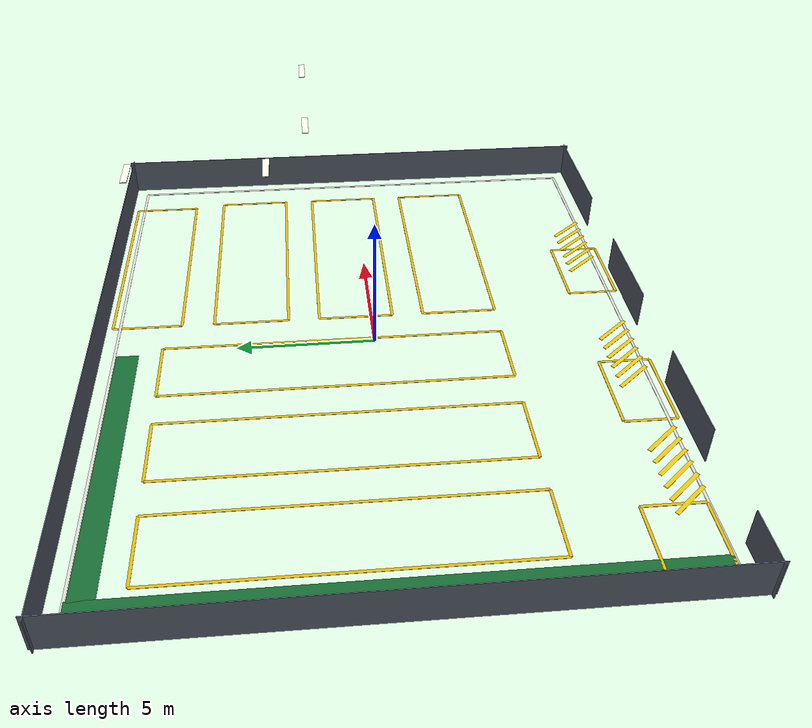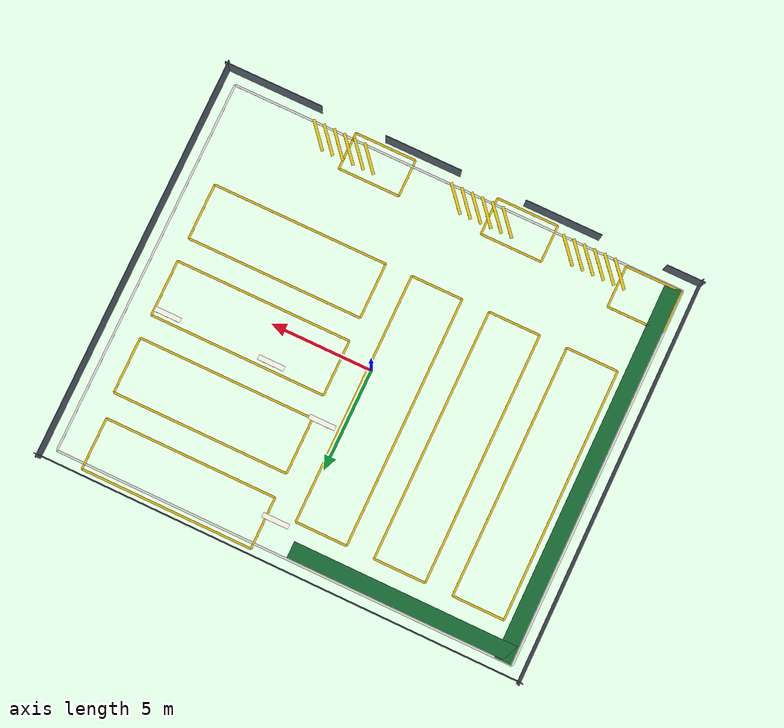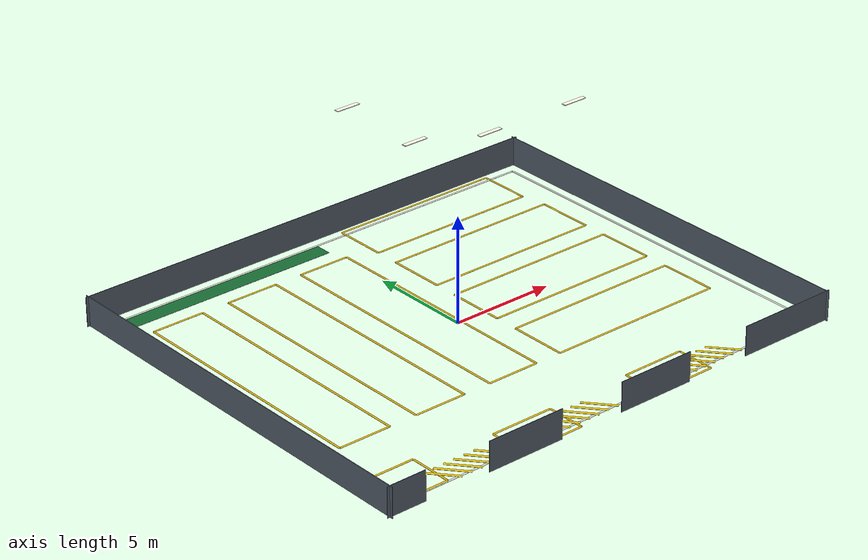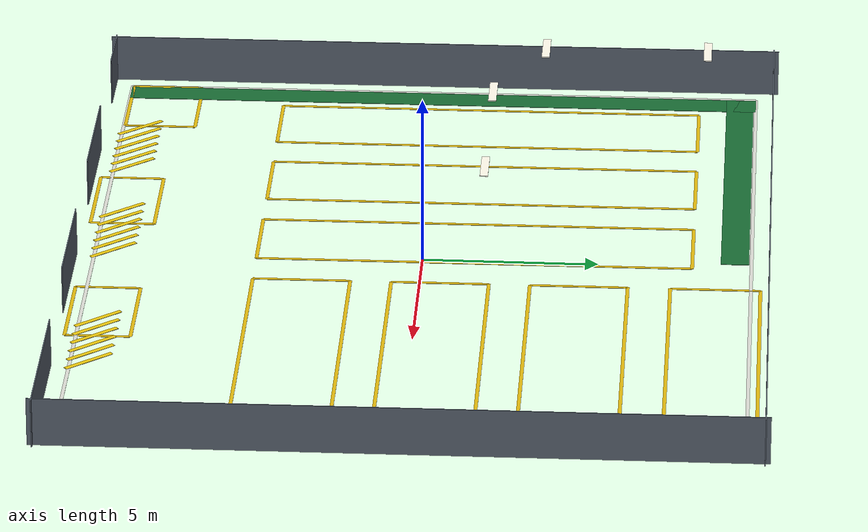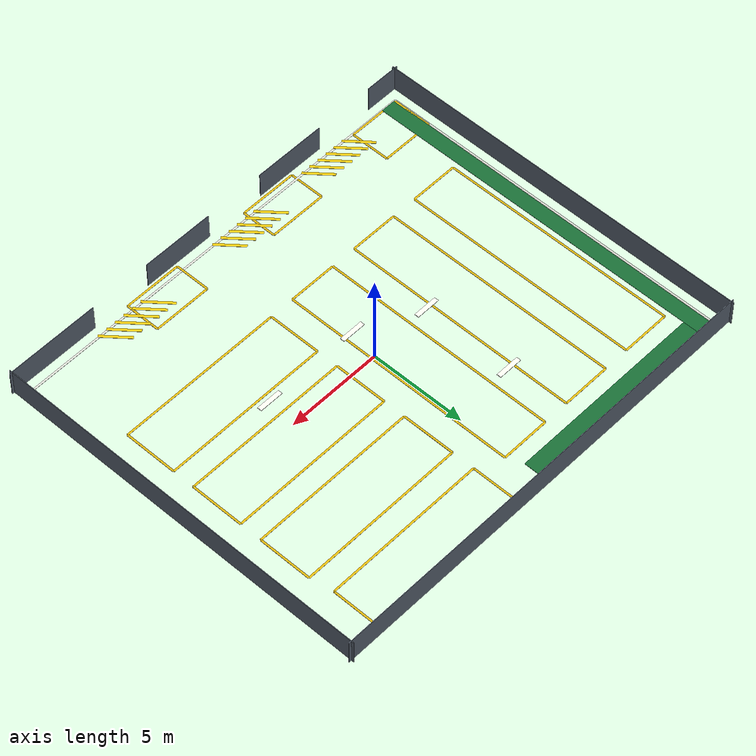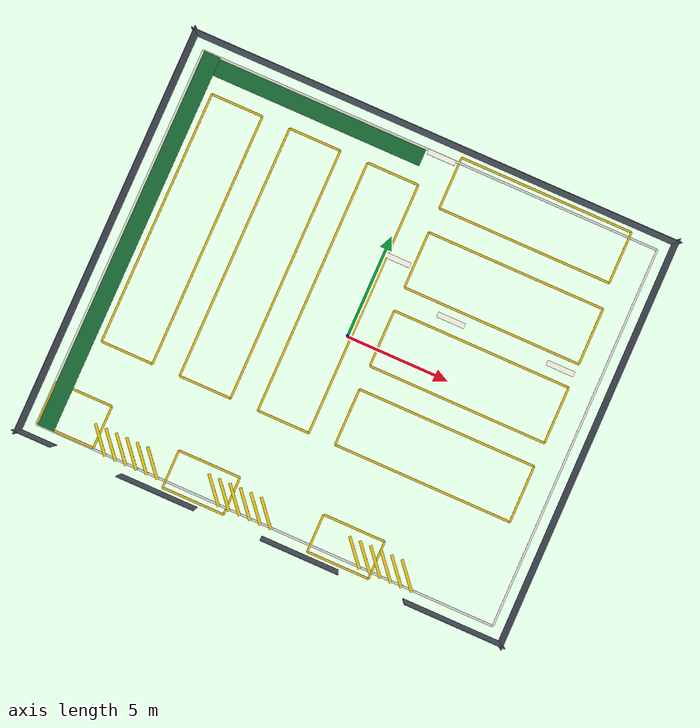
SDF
<sdf version="1.8">
 <world name="warehouse_v2">
  <model name="lamp_glow_8">
   <static>true</static>
   <pose>0.62 3.50 6.97 0 0 0</pose>
   <link name="link">
    <visual name="visual">
     <geometry><box><size>1.20 0.22 0.03</size></box></geometry>
     <material>
      <ambient>1 0.98 0.92 1</ambient>
      <diffuse>1 0.98 0.92 1</diffuse>
      <specular>0.2 0.2 0.2 1</specular>
      <emissive>1 0.97 0.90 1</emissive>
     </material>
     <cast_shadows>false</cast_shadows>
    </visual>
   </link>
  </model>
  <model name="lamp_glow_9">
   <static>true</static>
   <pose>0.62 8.00 6.97 0 0 0</pose>
   <link name="link">
    <visual name="visual">
     <geometry><box><size>1.20 0.22 0.03</size></box></geometry>
     <material>
      <ambient>1 0.98 0.92 1</ambient>
      <diffuse>1 0.98 0.92 1</diffuse>
      <specular>0.2 0.2 0.2 1</specular>
      <emissive>1 0.97 0.90 1</emissive>
     </material>
     <cast_shadows>false</cast_shadows>
    </visual>
   </link>
  </model>
  <model name="lamp_glow_12">
   <static>true</static>
   <pose>3.60 2.15 6.97 0 0 0</pose>
   <link name="link">
    <visual name="visual">
     <geometry><box><size>1.20 0.22 0.03</size></box></geometry>
     <material>
      <ambient>1 0.98 0.92 1</ambient>
      <diffuse>1 0.98 0.92 1</diffuse>
      <specular>0.2 0.2 0.2 1</specular>
      <emissive>1 0.97 0.90 1</emissive>
     </material>
     <cast_shadows>false</cast_shadows>
    </visual>
   </link>
  </model>
  <model name="lamp_glow_13">
   <static>true</static>
   <pose>8.40 2.15 6.97 0 0 0</pose>
   <link name="link">
    <visual name="visual">
     <geometry><box><size>1.20 0.22 0.03</size></box></geometry>
     <material>
      <ambient>1 0.98 0.92 1</ambient>
      <diffuse>1 0.98 0.92 1</diffuse>
      <specular>0.2 0.2 0.2 1</specular>
      <emissive>1 0.97 0.90 1</emissive>
     </material>
     <cast_shadows>false</cast_shadows>
    </visual>
   </link>
  </model>
  <model name="ground_plane">
   <static>true</static>
   <link name="link">
    <collision name="collision">
     <geometry><plane><normal>0 0 1</normal><size>24.5 20.5</size></plane></geometry>
    </collision>
   </link>
  </model>
  <model name="warehouse_v2_floor_markings">
   <static>true</static>
   <link name="bay_A1_s">
    <pose>-8.900 -4.720 0.020 0 0 0.0000</pose>
    <visual name="visual">
     <geometry><box><size>2.540 0.100 0.012</size></box></geometry>
     <material>
      <ambient>0.88 0.72 0.05 1</ambient>
      <diffuse>0.88 0.72 0.05 1</diffuse>
      <specular>0.100 0.100 0.100 1</specular>
      <pbr><metal><metalness>0.00</metalness><roughness>0.80</roughness></metal></pbr>
     </material>
    </visual>
   </link>
   <link name="bay_A1_n">
    <pose>-8.900 7.671 0.020 0 0 0.0000</pose>
    <visual name="visual">
     <geometry><box><size>2.540 0.100 0.012</size></box></geometry>
     <material>
      <ambient>0.88 0.72 0.05 1</ambient>
      <diffuse>0.88 0.72 0.05 1</diffuse>
      <specular>0.100 0.100 0.100 1</specular>
      <pbr><metal><metalness>0.00</metalness><roughness>0.80</roughness></metal></pbr>
     </material>
    </visual>
   </link>
   <link name="bay_A1_w">
    <pose>-10.170 1.475 0.020 0 0 0.0000</pose>
    <visual name="visual">
     <geometry><box><size>0.100 12.391 0.012</size></box></geometry>
     <material>
      <ambient>0.88 0.72 0.05 1</ambient>
      <diffuse>0.88 0.72 0.05 1</diffuse>
      <specular>0.100 0.100 0.100 1</specular>
      <pbr><metal><metalness>0.00</metalness><roughness>0.80</roughness></metal></pbr>
     </material>
    </visual>
   </link>
   <link name="bay_A1_e">
    <pose>-7.630 1.475 0.020 0 0 0.0000</pose>
    <visual name="visual">
     <geometry><box><size>0.100 12.391 0.012</size></box></geometry>
     <material>
      <ambient>0.88 0.72 0.05 1</ambient>
      <diffuse>0.88 0.72 0.05 1</diffuse>
      <specular>0.100 0.100 0.100 1</specular>
      <pbr><metal><metalness>0.00</metalness><roughness>0.80</roughness></metal></pbr>
     </material>
    </visual>
   </link>
   <link name="bay_A2_s">
    <pose>-5.000 -4.720 0.020 0 0 0.0000</pose>
    <visual name="visual">
     <geometry><box><size>2.540 0.100 0.012</size></box></geometry>
     <material>
      <ambient>0.88 0.72 0.05 1</ambient>
      <diffuse>0.88 0.72 0.05 1</diffuse>
      <specular>0.100 0.100 0.100 1</specular>
      <pbr><metal><metalness>0.00</metalness><roughness>0.80</roughness></metal></pbr>
     </material>
    </visual>
   </link>
   <link name="bay_A2_n">
    <pose>-5.000 7.671 0.020 0 0 0.0000</pose>
    <visual name="visual">
     <geometry><box><size>2.540 0.100 0.012</size></box></geometry>
     <material>
      <ambient>0.88 0.72 0.05 1</ambient>
      <diffuse>0.88 0.72 0.05 1</diffuse>
      <specular>0.100 0.100 0.100 1</specular>
      <pbr><metal><metalness>0.00</metalness><roughness>0.80</roughness></metal></pbr>
     </material>
    </visual>
   </link>
   <link name="bay_A2_w">
    <pose>-6.270 1.475 0.020 0 0 0.0000</pose>
    <visual name="visual">
     <geometry><box><size>0.100 12.391 0.012</size></box></geometry>
     <material>
      <ambient>0.88 0.72 0.05 1</ambient>
      <diffuse>0.88 0.72 0.05 1</diffuse>
      <specular>0.100 0.100 0.100 1</specular>
      <pbr><metal><metalness>0.00</metalness><roughness>0.80</roughness></metal></pbr>
     </material>
    </visual>
   </link>
   <link name="bay_A2_e">
    <pose>-3.730 1.475 0.020 0 0 0.0000</pose>
    <visual name="visual">
     <geometry><box><size>0.100 12.391 0.012</size></box></geometry>
     <material>
      <ambient>0.88 0.72 0.05 1</ambient>
      <diffuse>0.88 0.72 0.05 1</diffuse>
      <specular>0.100 0.100 0.100 1</specular>
      <pbr><metal><metalness>0.00</metalness><roughness>0.80</roughness></metal></pbr>
     </material>
    </visual>
   </link>
   <link name="bay_A3_s">
    <pose>-1.100 -4.720 0.020 0 0 0.0000</pose>
    <visual name="visual">
     <geometry><box><size>2.540 0.100 0.012</size></box></geometry>
     <material>
      <ambient>0.88 0.72 0.05 1</ambient>
      <diffuse>0.88 0.72 0.05 1</diffuse>
      <specular>0.100 0.100 0.100 1</specular>
      <pbr><metal><metalness>0.00</metalness><roughness>0.80</roughness></metal></pbr>
     </material>
    </visual>
   </link>
   <link name="bay_A3_n">
    <pose>-1.100 7.671 0.020 0 0 0.0000</pose>
    <visual name="visual">
     <geometry><box><size>2.540 0.100 0.012</size></box></geometry>
     <material>
      <ambient>0.88 0.72 0.05 1</ambient>
      <diffuse>0.88 0.72 0.05 1</diffuse>
      <specular>0.100 0.100 0.100 1</specular>
      <pbr><metal><metalness>0.00</metalness><roughness>0.80</roughness></metal></pbr>
     </material>
    </visual>
   </link>
   <link name="bay_A3_w">
    <pose>-2.370 1.475 0.020 0 0 0.0000</pose>
    <visual name="visual">
     <geometry><box><size>0.100 12.391 0.012</size></box></geometry>
     <material>
      <ambient>0.88 0.72 0.05 1</ambient>
      <diffuse>0.88 0.72 0.05 1</diffuse>
      <specular>0.100 0.100 0.100 1</specular>
      <pbr><metal><metalness>0.00</metalness><roughness>0.80</roughness></metal></pbr>
     </material>
    </visual>
   </link>
   <link name="bay_A3_e">
    <pose>0.170 1.475 0.020 0 0 0.0000</pose>
    <visual name="visual">
     <geometry><box><size>0.100 12.391 0.012</size></box></geometry>
     <material>
      <ambient>0.88 0.72 0.05 1</ambient>
      <diffuse>0.88 0.72 0.05 1</diffuse>
      <specular>0.100 0.100 0.100 1</specular>
      <pbr><metal><metalness>0.00</metalness><roughness>0.80</roughness></metal></pbr>
     </material>
    </visual>
   </link>
   <link name="bay_B1_s">
    <pose>5.717 7.080 0.020 0 0 0.0000</pose>
    <visual name="visual">
     <geometry><box><size>8.474 0.100 0.012</size></box></geometry>
     <material>
      <ambient>0.88 0.72 0.05 1</ambient>
      <diffuse>0.88 0.72 0.05 1</diffuse>
      <specular>0.100 0.100 0.100 1</specular>
      <pbr><metal><metalness>0.00</metalness><roughness>0.80</roughness></metal></pbr>
     </material>
    </visual>
   </link>
   <link name="bay_B1_n">
    <pose>5.717 9.620 0.020 0 0 0.0000</pose>
    <visual name="visual">
     <geometry><box><size>8.474 0.100 0.012</size></box></geometry>
     <material>
      <ambient>0.88 0.72 0.05 1</ambient>
      <diffuse>0.88 0.72 0.05 1</diffuse>
      <specular>0.100 0.100 0.100 1</specular>
      <pbr><metal><metalness>0.00</metalness><roughness>0.80</roughness></metal></pbr>
     </material>
    </visual>
   </link>
   <link name="bay_B1_w">
    <pose>1.480 8.350 0.020 0 0 0.0000</pose>
    <visual name="visual">
     <geometry><box><size>0.100 2.540 0.012</size></box></geometry>
     <material>
      <ambient>0.88 0.72 0.05 1</ambient>
      <diffuse>0.88 0.72 0.05 1</diffuse>
      <specular>0.100 0.100 0.100 1</specular>
      <pbr><metal><metalness>0.00</metalness><roughness>0.80</roughness></metal></pbr>
     </material>
    </visual>
   </link>
   <link name="bay_B1_e">
    <pose>9.954 8.350 0.020 0 0 0.0000</pose>
    <visual name="visual">
     <geometry><box><size>0.100 2.540 0.012</size></box></geometry>
     <material>
      <ambient>0.88 0.72 0.05 1</ambient>
      <diffuse>0.88 0.72 0.05 1</diffuse>
      <specular>0.100 0.100 0.100 1</specular>
      <pbr><metal><metalness>0.00</metalness><roughness>0.80</roughness></metal></pbr>
     </material>
    </visual>
   </link>
   <link name="bay_Cs_s">
    <pose>5.825 -4.720 0.020 0 0 0.0000</pose>
    <visual name="visual">
     <geometry><box><size>8.690 0.100 0.012</size></box></geometry>
     <material>
      <ambient>0.88 0.72 0.05 1</ambient>
      <diffuse>0.88 0.72 0.05 1</diffuse>
      <specular>0.100 0.100 0.100 1</specular>
      <pbr><metal><metalness>0.00</metalness><roughness>0.80</roughness></metal></pbr>
     </material>
    </visual>
   </link>
   <link name="bay_Cs_n">
    <pose>5.825 -1.960 0.020 0 0 0.0000</pose>
    <visual name="visual">
     <geometry><box><size>8.690 0.100 0.012</size></box></geometry>
     <material>
      <ambient>0.88 0.72 0.05 1</ambient>
      <diffuse>0.88 0.72 0.05 1</diffuse>
      <specular>0.100 0.100 0.100 1</specular>
      <pbr><metal><metalness>0.00</metalness><roughness>0.80</roughness></metal></pbr>
     </material>
    </visual>
   </link>
   <link name="bay_Cs_w">
    <pose>1.480 -3.340 0.020 0 0 0.0000</pose>
    <visual name="visual">
     <geometry><box><size>0.100 2.760 0.012</size></box></geometry>
     <material>
      <ambient>0.88 0.72 0.05 1</ambient>
      <diffuse>0.88 0.72 0.05 1</diffuse>
      <specular>0.100 0.100 0.100 1</specular>
      <pbr><metal><metalness>0.00</metalness><roughness>0.80</roughness></metal></pbr>
     </material>
    </visual>
   </link>
   <link name="bay_Cs_e">
    <pose>10.170 -3.340 0.020 0 0 0.0000</pose>
    <visual name="visual">
     <geometry><box><size>0.100 2.760 0.012</size></box></geometry>
     <material>
      <ambient>0.88 0.72 0.05 1</ambient>
      <diffuse>0.88 0.72 0.05 1</diffuse>
      <specular>0.100 0.100 0.100 1</specular>
      <pbr><metal><metalness>0.00</metalness><roughness>0.80</roughness></metal></pbr>
     </material>
    </visual>
   </link>
   <link name="bay_Cm_s">
    <pose>5.825 -0.800 0.020 0 0 0.0000</pose>
    <visual name="visual">
     <geometry><box><size>8.690 0.100 0.012</size></box></geometry>
     <material>
      <ambient>0.88 0.72 0.05 1</ambient>
      <diffuse>0.88 0.72 0.05 1</diffuse>
      <specular>0.100 0.100 0.100 1</specular>
      <pbr><metal><metalness>0.00</metalness><roughness>0.80</roughness></metal></pbr>
     </material>
    </visual>
   </link>
   <link name="bay_Cm_n">
    <pose>5.825 1.960 0.020 0 0 0.0000</pose>
    <visual name="visual">
     <geometry><box><size>8.690 0.100 0.012</size></box></geometry>
     <material>
      <ambient>0.88 0.72 0.05 1</ambient>
      <diffuse>0.88 0.72 0.05 1</diffuse>
      <specular>0.100 0.100 0.100 1</specular>
      <pbr><metal><metalness>0.00</metalness><roughness>0.80</roughness></metal></pbr>
     </material>
    </visual>
   </link>
   <link name="bay_Cm_w">
    <pose>1.480 0.580 0.020 0 0 0.0000</pose>
    <visual name="visual">
     <geometry><box><size>0.100 2.760 0.012</size></box></geometry>
     <material>
      <ambient>0.88 0.72 0.05 1</ambient>
      <diffuse>0.88 0.72 0.05 1</diffuse>
      <specular>0.100 0.100 0.100 1</specular>
      <pbr><metal><metalness>0.00</metalness><roughness>0.80</roughness></metal></pbr>
     </material>
    </visual>
   </link>
   <link name="bay_Cm_e">
    <pose>10.170 0.580 0.020 0 0 0.0000</pose>
    <visual name="visual">
     <geometry><box><size>0.100 2.760 0.012</size></box></geometry>
     <material>
      <ambient>0.88 0.72 0.05 1</ambient>
      <diffuse>0.88 0.72 0.05 1</diffuse>
      <specular>0.100 0.100 0.100 1</specular>
      <pbr><metal><metalness>0.00</metalness><roughness>0.80</roughness></metal></pbr>
     </material>
    </visual>
   </link>
   <link name="bay_Cn_s">
    <pose>5.825 3.120 0.020 0 0 0.0000</pose>
    <visual name="visual">
     <geometry><box><size>8.690 0.100 0.012</size></box></geometry>
     <material>
      <ambient>0.88 0.72 0.05 1</ambient>
      <diffuse>0.88 0.72 0.05 1</diffuse>
      <specular>0.100 0.100 0.100 1</specular>
      <pbr><metal><metalness>0.00</metalness><roughness>0.80</roughness></metal></pbr>
     </material>
    </visual>
   </link>
   <link name="bay_Cn_n">
    <pose>5.825 5.880 0.020 0 0 0.0000</pose>
    <visual name="visual">
     <geometry><box><size>8.690 0.100 0.012</size></box></geometry>
     <material>
      <ambient>0.88 0.72 0.05 1</ambient>
      <diffuse>0.88 0.72 0.05 1</diffuse>
      <specular>0.100 0.100 0.100 1</specular>
      <pbr><metal><metalness>0.00</metalness><roughness>0.80</roughness></metal></pbr>
     </material>
    </visual>
   </link>
   <link name="bay_Cn_w">
    <pose>1.480 4.500 0.020 0 0 0.0000</pose>
    <visual name="visual">
     <geometry><box><size>0.100 2.760 0.012</size></box></geometry>
     <material>
      <ambient>0.88 0.72 0.05 1</ambient>
      <diffuse>0.88 0.72 0.05 1</diffuse>
      <specular>0.100 0.100 0.100 1</specular>
      <pbr><metal><metalness>0.00</metalness><roughness>0.80</roughness></metal></pbr>
     </material>
    </visual>
   </link>
   <link name="bay_Cn_e">
    <pose>10.170 4.500 0.020 0 0 0.0000</pose>
    <visual name="visual">
     <geometry><box><size>0.100 2.760 0.012</size></box></geometry>
     <material>
      <ambient>0.88 0.72 0.05 1</ambient>
      <diffuse>0.88 0.72 0.05 1</diffuse>
      <specular>0.100 0.100 0.100 1</specular>
      <pbr><metal><metalness>0.00</metalness><roughness>0.80</roughness></metal></pbr>
     </material>
    </visual>
   </link>
   <link name="bay_STAGE_MID_s">
    <pose>-3.400 -9.670 0.020 0 0 0.0000</pose>
    <visual name="visual">
     <geometry><box><size>3.040 0.100 0.012</size></box></geometry>
     <material>
      <ambient>0.88 0.72 0.05 1</ambient>
      <diffuse>0.88 0.72 0.05 1</diffuse>
      <specular>0.100 0.100 0.100 1</specular>
      <pbr><metal><metalness>0.00</metalness><roughness>0.80</roughness></metal></pbr>
     </material>
    </visual>
   </link>
   <link name="bay_STAGE_MID_n">
    <pose>-3.400 -7.830 0.020 0 0 0.0000</pose>
    <visual name="visual">
     <geometry><box><size>3.040 0.100 0.012</size></box></geometry>
     <material>
      <ambient>0.88 0.72 0.05 1</ambient>
      <diffuse>0.88 0.72 0.05 1</diffuse>
      <specular>0.100 0.100 0.100 1</specular>
      <pbr><metal><metalness>0.00</metalness><roughness>0.80</roughness></metal></pbr>
     </material>
    </visual>
   </link>
   <link name="bay_STAGE_MID_w">
    <pose>-4.920 -8.750 0.020 0 0 0.0000</pose>
    <visual name="visual">
     <geometry><box><size>0.100 1.840 0.012</size></box></geometry>
     <material>
      <ambient>0.88 0.72 0.05 1</ambient>
      <diffuse>0.88 0.72 0.05 1</diffuse>
      <specular>0.100 0.100 0.100 1</specular>
      <pbr><metal><metalness>0.00</metalness><roughness>0.80</roughness></metal></pbr>
     </material>
    </visual>
   </link>
   <link name="bay_STAGE_MID_e">
    <pose>-1.880 -8.750 0.020 0 0 0.0000</pose>
    <visual name="visual">
     <geometry><box><size>0.100 1.840 0.012</size></box></geometry>
     <material>
      <ambient>0.88 0.72 0.05 1</ambient>
      <diffuse>0.88 0.72 0.05 1</diffuse>
      <specular>0.100 0.100 0.100 1</specular>
      <pbr><metal><metalness>0.00</metalness><roughness>0.80</roughness></metal></pbr>
     </material>
    </visual>
   </link>
   <link name="bay_STAGE_E_s">
    <pose>3.800 -9.670 0.020 0 0 0.0000</pose>
    <visual name="visual">
     <geometry><box><size>3.040 0.100 0.012</size></box></geometry>
     <material>
      <ambient>0.88 0.72 0.05 1</ambient>
      <diffuse>0.88 0.72 0.05 1</diffuse>
      <specular>0.100 0.100 0.100 1</specular>
      <pbr><metal><metalness>0.00</metalness><roughness>0.80</roughness></metal></pbr>
     </material>
    </visual>
   </link>
   <link name="bay_STAGE_E_n">
    <pose>3.800 -7.830 0.020 0 0 0.0000</pose>
    <visual name="visual">
     <geometry><box><size>3.040 0.100 0.012</size></box></geometry>
     <material>
      <ambient>0.88 0.72 0.05 1</ambient>
      <diffuse>0.88 0.72 0.05 1</diffuse>
      <specular>0.100 0.100 0.100 1</specular>
      <pbr><metal><metalness>0.00</metalness><roughness>0.80</roughness></metal></pbr>
     </material>
    </visual>
   </link>
   <link name="bay_STAGE_E_w">
    <pose>2.280 -8.750 0.020 0 0 0.0000</pose>
    <visual name="visual">
     <geometry><box><size>0.100 1.840 0.012</size></box></geometry>
     <material>
      <ambient>0.88 0.72 0.05 1</ambient>
      <diffuse>0.88 0.72 0.05 1</diffuse>
      <specular>0.100 0.100 0.100 1</specular>
      <pbr><metal><metalness>0.00</metalness><roughness>0.80</roughness></metal></pbr>
     </material>
    </visual>
   </link>
   <link name="bay_STAGE_E_e">
    <pose>5.320 -8.750 0.020 0 0 0.0000</pose>
    <visual name="visual">
     <geometry><box><size>0.100 1.840 0.012</size></box></geometry>
     <material>
      <ambient>0.88 0.72 0.05 1</ambient>
      <diffuse>0.88 0.72 0.05 1</diffuse>
      <specular>0.100 0.100 0.100 1</specular>
      <pbr><metal><metalness>0.00</metalness><roughness>0.80</roughness></metal></pbr>
     </material>
    </visual>
   </link>
   <link name="site_s">
    <pose>0.000 -9.350 0.020 0 0 0.0000</pose>
    <visual name="visual">
     <geometry><box><size>22.700 0.100 0.012</size></box></geometry>
     <material>
      <ambient>0.86 0.86 0.83 1</ambient>
      <diffuse>0.86 0.86 0.83 1</diffuse>
      <specular>0.100 0.100 0.100 1</specular>
      <pbr><metal><metalness>0.00</metalness><roughness>0.80</roughness></metal></pbr>
     </material>
    </visual>
   </link>
   <link name="site_n">
    <pose>0.000 9.350 0.020 0 0 0.0000</pose>
    <visual name="visual">
     <geometry><box><size>22.700 0.100 0.012</size></box></geometry>
     <material>
      <ambient>0.86 0.86 0.83 1</ambient>
      <diffuse>0.86 0.86 0.83 1</diffuse>
      <specular>0.100 0.100 0.100 1</specular>
      <pbr><metal><metalness>0.00</metalness><roughness>0.80</roughness></metal></pbr>
     </material>
    </visual>
   </link>
   <link name="site_w">
    <pose>-11.350 0.000 0.020 0 0 0.0000</pose>
    <visual name="visual">
     <geometry><box><size>0.100 18.700 0.012</size></box></geometry>
     <material>
      <ambient>0.86 0.86 0.83 1</ambient>
      <diffuse>0.86 0.86 0.83 1</diffuse>
      <specular>0.100 0.100 0.100 1</specular>
      <pbr><metal><metalness>0.00</metalness><roughness>0.80</roughness></metal></pbr>
     </material>
    </visual>
   </link>
   <link name="site_e">
    <pose>11.350 0.000 0.020 0 0 0.0000</pose>
    <visual name="visual">
     <geometry><box><size>0.100 18.700 0.012</size></box></geometry>
     <material>
      <ambient>0.86 0.86 0.83 1</ambient>
      <diffuse>0.86 0.86 0.83 1</diffuse>
      <specular>0.100 0.100 0.100 1</specular>
      <pbr><metal><metalness>0.00</metalness><roughness>0.80</roughness></metal></pbr>
     </material>
    </visual>
   </link>
  </model>
  <model name="warehouse_v2_decor">
   <static>true</static>
   <link name="nogo_office_s">
    <pose>-9.915 -9.300 0.022 0 0 0.0000</pose>
    <visual name="visual">
     <geometry><box><size>2.770 0.100 0.014</size></box></geometry>
     <material>
      <ambient>0.88 0.72 0.05 1</ambient>
      <diffuse>0.88 0.72 0.05 1</diffuse>
      <specular>0.225 0.225 0.225 1</specular>
      <pbr><metal><metalness>0.00</metalness><roughness>0.55</roughness></metal></pbr>
     </material>
    </visual>
   </link>
   <link name="nogo_office_n">
    <pose>-9.915 -7.230 0.022 0 0 0.0000</pose>
    <visual name="visual">
     <geometry><box><size>2.770 0.100 0.014</size></box></geometry>
     <material>
      <ambient>0.88 0.72 0.05 1</ambient>
      <diffuse>0.88 0.72 0.05 1</diffuse>
      <specular>0.225 0.225 0.225 1</specular>
      <pbr><metal><metalness>0.00</metalness><roughness>0.55</roughness></metal></pbr>
     </material>
    </visual>
   </link>
   <link name="nogo_office_w">
    <pose>-11.300 -8.265 0.022 0 0 0.0000</pose>
    <visual name="visual">
     <geometry><box><size>0.100 2.070 0.014</size></box></geometry>
     <material>
      <ambient>0.88 0.72 0.05 1</ambient>
      <diffuse>0.88 0.72 0.05 1</diffuse>
      <specular>0.225 0.225 0.225 1</specular>
      <pbr><metal><metalness>0.00</metalness><roughness>0.55</roughness></metal></pbr>
     </material>
    </visual>
   </link>
   <link name="nogo_office_e">
    <pose>-8.530 -8.265 0.022 0 0 0.0000</pose>
    <visual name="visual">
     <geometry><box><size>0.100 2.070 0.014</size></box></geometry>
     <material>
      <ambient>0.88 0.72 0.05 1</ambient>
      <diffuse>0.88 0.72 0.05 1</diffuse>
      <specular>0.225 0.225 0.225 1</specular>
      <pbr><metal><metalness>0.00</metalness><roughness>0.55</roughness></metal></pbr>
     </material>
    </visual>
   </link>
   <link name="walk_west">
    <pose>-10.880 0.000 0.022 0 0 0.0000</pose>
    <visual name="visual">
     <geometry><box><size>0.800 18.700 0.014</size></box></geometry>
     <material>
      <ambient>0.09 0.42 0.20 1</ambient>
      <diffuse>0.09 0.42 0.20 1</diffuse>
      <specular>0.225 0.225 0.225 1</specular>
      <pbr><metal><metalness>0.00</metalness><roughness>0.55</roughness></metal></pbr>
     </material>
    </visual>
   </link>
   <link name="walk_north">
    <pose>-5.715 8.880 0.022 0 0 0.0000</pose>
    <visual name="visual">
     <geometry><box><size>11.130 0.800 0.014</size></box></geometry>
     <material>
      <ambient>0.09 0.42 0.20 1</ambient>
      <diffuse>0.09 0.42 0.20 1</diffuse>
      <specular>0.225 0.225 0.225 1</specular>
      <pbr><metal><metalness>0.00</metalness><roughness>0.55</roughness></metal></pbr>
     </material>
    </visual>
   </link>
   <link name="hatch_0_0">
    <pose>-8.400 -8.840 0.023 0 0 0.7000</pose>
    <visual name="visual">
     <geometry><box><size>0.140 1.550 0.014</size></box></geometry>
     <material>
      <ambient>0.92 0.78 0.05 1</ambient>
      <diffuse>0.92 0.78 0.05 1</diffuse>
      <specular>0.100 0.100 0.100 1</specular>
      <pbr><metal><metalness>0.00</metalness><roughness>0.80</roughness></metal></pbr>
     </material>
    </visual>
   </link>
   <link name="hatch_0_1">
    <pose>-7.880 -8.840 0.023 0 0 0.7000</pose>
    <visual name="visual">
     <geometry><box><size>0.140 1.550 0.014</size></box></geometry>
     <material>
      <ambient>0.92 0.78 0.05 1</ambient>
      <diffuse>0.92 0.78 0.05 1</diffuse>
      <specular>0.100 0.100 0.100 1</specular>
      <pbr><metal><metalness>0.00</metalness><roughness>0.80</roughness></metal></pbr>
     </material>
    </visual>
   </link>
   <link name="hatch_0_2">
    <pose>-7.360 -8.840 0.023 0 0 0.7000</pose>
    <visual name="visual">
     <geometry><box><size>0.140 1.550 0.014</size></box></geometry>
     <material>
      <ambient>0.92 0.78 0.05 1</ambient>
      <diffuse>0.92 0.78 0.05 1</diffuse>
      <specular>0.100 0.100 0.100 1</specular>
      <pbr><metal><metalness>0.00</metalness><roughness>0.80</roughness></metal></pbr>
     </material>
    </visual>
   </link>
   <link name="hatch_0_3">
    <pose>-6.840 -8.840 0.023 0 0 0.7000</pose>
    <visual name="visual">
     <geometry><box><size>0.140 1.550 0.014</size></box></geometry>
     <material>
      <ambient>0.92 0.78 0.05 1</ambient>
      <diffuse>0.92 0.78 0.05 1</diffuse>
      <specular>0.100 0.100 0.100 1</specular>
      <pbr><metal><metalness>0.00</metalness><roughness>0.80</roughness></metal></pbr>
     </material>
    </visual>
   </link>
   <link name="hatch_0_4">
    <pose>-6.320 -8.840 0.023 0 0 0.7000</pose>
    <visual name="visual">
     <geometry><box><size>0.140 1.550 0.014</size></box></geometry>
     <material>
      <ambient>0.92 0.78 0.05 1</ambient>
      <diffuse>0.92 0.78 0.05 1</diffuse>
      <specular>0.100 0.100 0.100 1</specular>
      <pbr><metal><metalness>0.00</metalness><roughness>0.80</roughness></metal></pbr>
     </material>
    </visual>
   </link>
   <link name="hatch_0_5">
    <pose>-5.800 -8.840 0.023 0 0 0.7000</pose>
    <visual name="visual">
     <geometry><box><size>0.140 1.550 0.014</size></box></geometry>
     <material>
      <ambient>0.92 0.78 0.05 1</ambient>
      <diffuse>0.92 0.78 0.05 1</diffuse>
      <specular>0.100 0.100 0.100 1</specular>
      <pbr><metal><metalness>0.00</metalness><roughness>0.80</roughness></metal></pbr>
     </material>
    </visual>
   </link>
   <link name="hatch_1_0">
    <pose>-2.740 -8.840 0.023 0 0 0.7000</pose>
    <visual name="visual">
     <geometry><box><size>0.140 1.550 0.014</size></box></geometry>
     <material>
      <ambient>0.92 0.78 0.05 1</ambient>
      <diffuse>0.92 0.78 0.05 1</diffuse>
      <specular>0.100 0.100 0.100 1</specular>
      <pbr><metal><metalness>0.00</metalness><roughness>0.80</roughness></metal></pbr>
     </material>
    </visual>
   </link>
   <link name="hatch_1_1">
    <pose>-2.220 -8.840 0.023 0 0 0.7000</pose>
    <visual name="visual">
     <geometry><box><size>0.140 1.550 0.014</size></box></geometry>
     <material>
      <ambient>0.92 0.78 0.05 1</ambient>
      <diffuse>0.92 0.78 0.05 1</diffuse>
      <specular>0.100 0.100 0.100 1</specular>
      <pbr><metal><metalness>0.00</metalness><roughness>0.80</roughness></metal></pbr>
     </material>
    </visual>
   </link>
   <link name="hatch_1_2">
    <pose>-1.700 -8.840 0.023 0 0 0.7000</pose>
    <visual name="visual">
     <geometry><box><size>0.140 1.550 0.014</size></box></geometry>
     <material>
      <ambient>0.92 0.78 0.05 1</ambient>
      <diffuse>0.92 0.78 0.05 1</diffuse>
      <specular>0.100 0.100 0.100 1</specular>
      <pbr><metal><metalness>0.00</metalness><roughness>0.80</roughness></metal></pbr>
     </material>
    </visual>
   </link>
   <link name="hatch_1_3">
    <pose>-1.180 -8.840 0.023 0 0 0.7000</pose>
    <visual name="visual">
     <geometry><box><size>0.140 1.550 0.014</size></box></geometry>
     <material>
      <ambient>0.92 0.78 0.05 1</ambient>
      <diffuse>0.92 0.78 0.05 1</diffuse>
      <specular>0.100 0.100 0.100 1</specular>
      <pbr><metal><metalness>0.00</metalness><roughness>0.80</roughness></metal></pbr>
     </material>
    </visual>
   </link>
   <link name="hatch_1_4">
    <pose>-0.660 -8.840 0.023 0 0 0.7000</pose>
    <visual name="visual">
     <geometry><box><size>0.140 1.550 0.014</size></box></geometry>
     <material>
      <ambient>0.92 0.78 0.05 1</ambient>
      <diffuse>0.92 0.78 0.05 1</diffuse>
      <specular>0.100 0.100 0.100 1</specular>
      <pbr><metal><metalness>0.00</metalness><roughness>0.80</roughness></metal></pbr>
     </material>
    </visual>
   </link>
   <link name="hatch_1_5">
    <pose>-0.140 -8.840 0.023 0 0 0.7000</pose>
    <visual name="visual">
     <geometry><box><size>0.140 1.550 0.014</size></box></geometry>
     <material>
      <ambient>0.92 0.78 0.05 1</ambient>
      <diffuse>0.92 0.78 0.05 1</diffuse>
      <specular>0.100 0.100 0.100 1</specular>
      <pbr><metal><metalness>0.00</metalness><roughness>0.80</roughness></metal></pbr>
     </material>
    </visual>
   </link>
   <link name="hatch_2_0">
    <pose>4.260 -8.840 0.023 0 0 0.7000</pose>
    <visual name="visual">
     <geometry><box><size>0.140 1.550 0.014</size></box></geometry>
     <material>
      <ambient>0.92 0.78 0.05 1</ambient>
      <diffuse>0.92 0.78 0.05 1</diffuse>
      <specular>0.100 0.100 0.100 1</specular>
      <pbr><metal><metalness>0.00</metalness><roughness>0.80</roughness></metal></pbr>
     </material>
    </visual>
   </link>
   <link name="hatch_2_1">
    <pose>4.780 -8.840 0.023 0 0 0.7000</pose>
    <visual name="visual">
     <geometry><box><size>0.140 1.550 0.014</size></box></geometry>
     <material>
      <ambient>0.92 0.78 0.05 1</ambient>
      <diffuse>0.92 0.78 0.05 1</diffuse>
      <specular>0.100 0.100 0.100 1</specular>
      <pbr><metal><metalness>0.00</metalness><roughness>0.80</roughness></metal></pbr>
     </material>
    </visual>
   </link>
   <link name="hatch_2_2">
    <pose>5.300 -8.840 0.023 0 0 0.7000</pose>
    <visual name="visual">
     <geometry><box><size>0.140 1.550 0.014</size></box></geometry>
     <material>
      <ambient>0.92 0.78 0.05 1</ambient>
      <diffuse>0.92 0.78 0.05 1</diffuse>
      <specular>0.100 0.100 0.100 1</specular>
      <pbr><metal><metalness>0.00</metalness><roughness>0.80</roughness></metal></pbr>
     </material>
    </visual>
   </link>
   <link name="hatch_2_3">
    <pose>5.820 -8.840 0.023 0 0 0.7000</pose>
    <visual name="visual">
     <geometry><box><size>0.140 1.550 0.014</size></box></geometry>
     <material>
      <ambient>0.92 0.78 0.05 1</ambient>
      <diffuse>0.92 0.78 0.05 1</diffuse>
      <specular>0.100 0.100 0.100 1</specular>
      <pbr><metal><metalness>0.00</metalness><roughness>0.80</roughness></metal></pbr>
     </material>
    </visual>
   </link>
   <link name="hatch_2_4">
    <pose>6.340 -8.840 0.023 0 0 0.7000</pose>
    <visual name="visual">
     <geometry><box><size>0.140 1.550 0.014</size></box></geometry>
     <material>
      <ambient>0.92 0.78 0.05 1</ambient>
      <diffuse>0.92 0.78 0.05 1</diffuse>
      <specular>0.100 0.100 0.100 1</specular>
      <pbr><metal><metalness>0.00</metalness><roughness>0.80</roughness></metal></pbr>
     </material>
    </visual>
   </link>
   <link name="hatch_2_5">
    <pose>6.860 -8.840 0.023 0 0 0.7000</pose>
    <visual name="visual">
     <geometry><box><size>0.140 1.550 0.014</size></box></geometry>
     <material>
      <ambient>0.92 0.78 0.05 1</ambient>
      <diffuse>0.92 0.78 0.05 1</diffuse>
      <specular>0.100 0.100 0.100 1</specular>
      <pbr><metal><metalness>0.00</metalness><roughness>0.80</roughness></metal></pbr>
     </material>
    </visual>
   </link>
   <link name="dado_west">
    <pose>-11.860 0.000 0.700 0 0 0.0000</pose>
    <visual name="visual">
     <geometry><box><size>0.030 20.000 1.400</size></box></geometry>
     <material>
      <ambient>0.36 0.40 0.45 1</ambient>
      <diffuse>0.36 0.40 0.45 1</diffuse>
      <specular>0.100 0.100 0.100 1</specular>
      <pbr><metal><metalness>0.00</metalness><roughness>0.80</roughness></metal></pbr>
     </material>
    </visual>
   </link>
   <link name="dado_east">
    <pose>11.860 0.000 0.700 0 0 0.0000</pose>
    <visual name="visual">
     <geometry><box><size>0.030 20.000 1.400</size></box></geometry>
     <material>
      <ambient>0.36 0.40 0.45 1</ambient>
      <diffuse>0.36 0.40 0.45 1</diffuse>
      <specular>0.100 0.100 0.100 1</specular>
      <pbr><metal><metalness>0.00</metalness><roughness>0.80</roughness></metal></pbr>
     </material>
    </visual>
   </link>
   <link name="dado_north">
    <pose>0.000 9.860 0.700 0 0 0.0000</pose>
    <visual name="visual">
     <geometry><box><size>24.000 0.030 1.400</size></box></geometry>
     <material>
      <ambient>0.36 0.40 0.45 1</ambient>
      <diffuse>0.36 0.40 0.45 1</diffuse>
      <specular>0.100 0.100 0.100 1</specular>
      <pbr><metal><metalness>0.00</metalness><roughness>0.80</roughness></metal></pbr>
     </material>
    </visual>
   </link>
   <link name="dado_south_0">
    <pose>-11.050 -9.860 0.700 0 0 0.0000</pose>
    <visual name="visual">
     <geometry><box><size>1.900 0.030 1.400</size></box></geometry>
     <material>
      <ambient>0.36 0.40 0.45 1</ambient>
      <diffuse>0.36 0.40 0.45 1</diffuse>
      <specular>0.100 0.100 0.100 1</specular>
      <pbr><metal><metalness>0.00</metalness><roughness>0.80</roughness></metal></pbr>
     </material>
    </visual>
   </link>
   <link name="dado_south_1">
    <pose>-5.000 -9.860 0.700 0 0 0.0000</pose>
    <visual name="visual">
     <geometry><box><size>3.800 0.030 1.400</size></box></geometry>
     <material>
      <ambient>0.36 0.40 0.45 1</ambient>
      <diffuse>0.36 0.40 0.45 1</diffuse>
      <specular>0.100 0.100 0.100 1</specular>
      <pbr><metal><metalness>0.00</metalness><roughness>0.80</roughness></metal></pbr>
     </material>
    </visual>
   </link>
   <link name="dado_south_2">
    <pose>2.000 -9.860 0.700 0 0 0.0000</pose>
    <visual name="visual">
     <geometry><box><size>3.800 0.030 1.400</size></box></geometry>
     <material>
      <ambient>0.36 0.40 0.45 1</ambient>
      <diffuse>0.36 0.40 0.45 1</diffuse>
      <specular>0.100 0.100 0.100 1</specular>
      <pbr><metal><metalness>0.00</metalness><roughness>0.80</roughness></metal></pbr>
     </material>
    </visual>
   </link>
   <link name="dado_south_3">
    <pose>9.550 -9.860 0.700 0 0 0.0000</pose>
    <visual name="visual">
     <geometry><box><size>4.900 0.030 1.400</size></box></geometry>
     <material>
      <ambient>0.36 0.40 0.45 1</ambient>
      <diffuse>0.36 0.40 0.45 1</diffuse>
      <specular>0.100 0.100 0.100 1</specular>
      <pbr><metal><metalness>0.00</metalness><roughness>0.80</roughness></metal></pbr>
     </material>
    </visual>
   </link>
  </model>
  <include>
   <name>external_camera_d</name>
   <uri>model://external_camera_d</uri>
   <pose>11.450 7.200 5.000 0 0.6632 -2.4435</pose>
  </include>
 </world>
</sdf>
